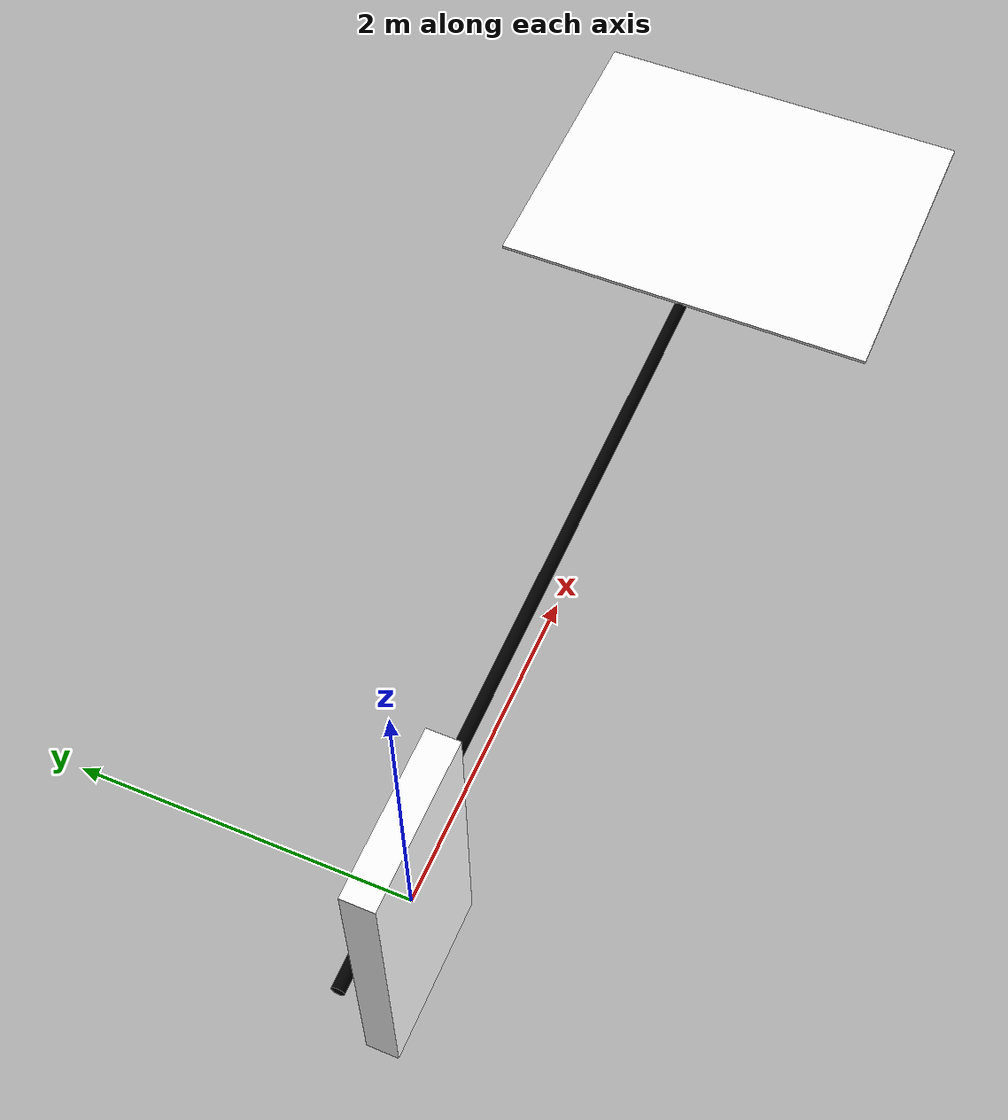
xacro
<?xml version="1.0"?>
<robot xmlns:xacro="http://www.ros.org/wiki/xacro" name="robot_thrower">

  <xacro:arg name="robot_namespace" default="" />
  <xacro:property name="base_width" value="0.2" />
  <xacro:property name="arm_length" value="6.0" />
  <xacro:property name="arm_radius" value="0.04" />
  <xacro:property name="arm_offset" value="0.6" />
  <xacro:property name="basket_length" value="2.0" />
  <xacro:property name="basket_height" value="0.02" />

  <material name="white" >
    <color rgba="1 1 1 1" />
  </material>

  <material name="black" >
    <color rgba="0 0 0 1" />
  </material>

  <gazebo>
    <plugin name="gazebo_ros_control" filename="libgazebo_ros_control.so">
      <robotNamespace>$(arg robot_namespace)</robotNamespace>
      <legacyModeNS>true</legacyModeNS>
    </plugin>
  </gazebo>

  <link name="base_link">
    <visual>
      <geometry>
        <box size="1 ${base_width} 2" />
      </geometry>
      <origin xyz="0 0 0" rpy="0 0 0" />
      <material name="white" />
    </visual>
    <collision>
      <geometry>
	<box size="1 ${base_width} 2" />
      </geometry>
      <origin xyz="0 0 0" rpy="0 0 0" />
    </collision>
  </link>

  <gazebo reference="base_link">
    <mu1 value="1.0" />
    <mu2 value="1.0" />
    <kp value="100000000.0" />
    <kd value="1.0" />
  </gazebo>

  <link name="inertial_link">
    <inertial>
      <mass value="50000" />
      <origin xyz="0 0 -1" />
      <inertia ixx="10000" ixy="0" ixz="0" iyy="10000" iyz="0" izz="10000" />
    </inertial>
  </link>

  <joint name="inertial_joint" type="fixed">
    <origin xyz="0 0 0" rpy="0 0 0" />
    <parent link="base_link" />
    <child link="inertial_link" />
  </joint>

  <link name="arm_link" >
    <visual>
      <geometry>
        <cylinder length="${arm_length}" radius="${arm_radius}" />
      </geometry>
      <origin xyz="${arm_length/2 - arm_offset} 0 0" rpy="0 ${pi/2} 0" />
      <material name="black" />
    </visual>
    <collision>
      <geometry>
        <cylinder length="${arm_length}" radius="${arm_radius}" />
      </geometry>
      <origin xyz="${arm_length/2 - arm_offset} 0 0" rpy="0 ${pi/2} 0" />
    </collision>

    <inertial>
    	<mass value="0.5" />
    	<origin xyz="0 0 0" />
    	<inertia  ixx="0.753971666667" ixy="0" ixz="0" iyy="0.753971666667" iyz="0" izz="0.145161" />
    </inertial>
  </link>

  <gazebo reference="arm_link">
    <mu1 value="1.0" />
    <mu2 value="1.0" />
    <kp value="10000000.0" />
    <kd value="1.0" />
  </gazebo>

  <link name="basket_link">
    <visual>
      <geometry>
        <box size="${basket_length} 2.5 ${basket_height}" />
      </geometry>
      <origin xyz="0 0 0" rpy="0 0 0" />
      <material name="white" />
    </visual>
    <collision>
      <geometry>
        <box size="${basket_length} 2.5 ${basket_height}" />
      </geometry>
      <origin xyz="0 0 0" rpy="0 0 0" />
    </collision>
    <inertial>
      <mass value="0.5" />
      <origin xyz="0 0 0" />
      <inertia  ixx="0.753971666667" ixy="0" ixz="0" iyy="0.753971666667" iyz="0" izz="0.145161" />
    </inertial>
  </link>

  <joint name="throw_joint" type="continuous">
    <parent link="base_link" />
    <child link="arm_link" />
    <origin xyz="0 ${base_width/2 + arm_radius} 0" rpy="0 0 0" />
    <axis xyz="0 1 0" rpy="0 0 0" />
  </joint>

  <transmission name="thorw_trans" type="SimpleTransmission">
    <type>transmission_interface/SimpleTransmission</type>
    <actuator name="throw_motor">
      <mechanicalReduction>1</mechanicalReduction>
    </actuator>
    <joint name="throw_joint">
      <hardwareInterface>hardware_interface/EffortJointInterface</hardwareInterface>
    </joint>
  </transmission>

  <joint name="basket_joint" type="fixed">
    <parent link="arm_link" />
    <child link="basket_link" />
    <origin xyz="${arm_length-arm_offset} 0 ${arm_radius}" rpy="0 0 0" />
  </joint>

</robot>
